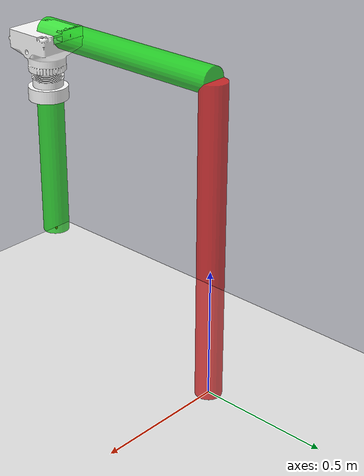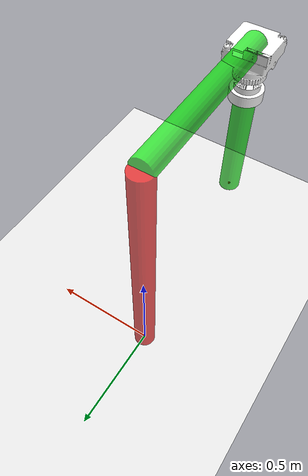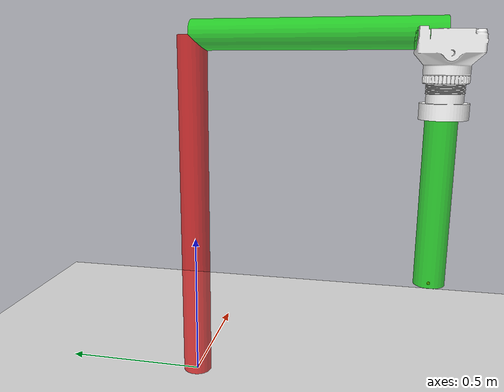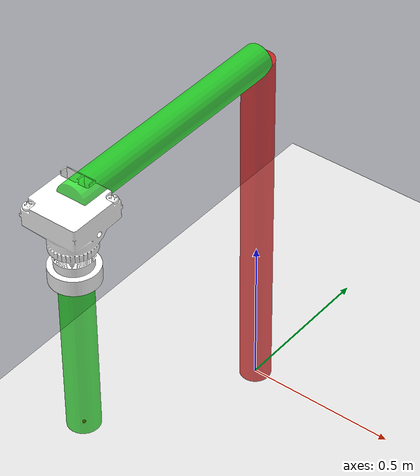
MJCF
<mujoco>

	<option gravity="0 0 -9.81" integrator = "RK4"/>

	<asset>
		<mesh name="camera_mesh" file="camera.stl" scale="0.01 0.01 0.01"/>
	</asset>

	<worldbody>
		<light diffuse=".5 .5 .5" pos="0 0 3" dir="0 0 -1"/>
		<geom type="plane" size="2.5 2.5 0.1" rgba=".9 .9 .9 1" pos="0 0 0"/>
		<body name="frame1" pos="0 0 1.2" xyaxes="1 0 0 0 0 1">
			<joint name="joint1" type="hinge" axis="0 1 0" pos="0 -1.2 0"/>
			<geom type="cylinder" size=".05 0.6" pos="0 -.6 0" xyaxes="1 0 0 0 0 -1" rgba="0.9 0 0 0.7"/>
			<body name="frame2" pos="0 0 .8" xyaxes="1 0 0 0 0 1">
				<site name="frame2-sensor" pos="0 0 0" size=".005" rgba="1 0 0 1" type="sphere"/>
				<joint name="joint2" type="hinge" axis="0 1 0" pos="0 -.8  0 "/>
				<geom type="cylinder" size=".05 0.4" pos="0 -0.4 0 " xyaxes="1 0 0 0 0 -1" rgba="0 0.9 0 0.7"/>
				<body name="end-effector" pos="0 0 0.8" xyaxes="0 -1 0 1 0 0">
					<site name="end-effector-sensor" pos="0 0 0" size=".005" rgba="1 0 0 1" type="sphere"/>
					<geom type="cylinder" size=".05 0.4" pos="0 0 -0.4" rgba="0 0.9 0 .7"/>
					<geom type="mesh" mesh="camera_mesh" rgba="1 1 1 1" euler="-90 90 0" pos="-.1 .1 -.54"/>
				</body>
			</body>
		</body>
	</worldbody>

	<sensor>
		<!-- Body velocities: expressed in the end-effector's (body) frame -->
		<velocimeter name="body-linear-vel-c" site="end-effector-sensor"/>
		<gyro name="body-ang-vel-c" site="end-effector-sensor"/>

		<!-- Body velocities: expressed in the frame 2 (body) frame -->
		<velocimeter name="body-linear-vel-2" site="frame2-sensor"/>
		<gyro name="body-ang-vel-2" site="frame2-sensor"/>

		<!-- Joint sensors for additional verification -->
		<jointpos name="joint1-position" joint="joint1"/>
		<jointpos name="joint2-position" joint="joint2"/>

		<jointvel name="joint1-velocity" joint="joint1"/>
		<jointvel name="joint2-velocity" joint="joint2"/>

	</sensor>

	<keyframe>
	<key name="home" qpos="1.570796327 0"/><!-- theta1, theta2-->
	<key name="Q1" qpos="2.617993878 -1.346396852"/><!-- theta1, theta2-->
	</keyframe>
</mujoco>
